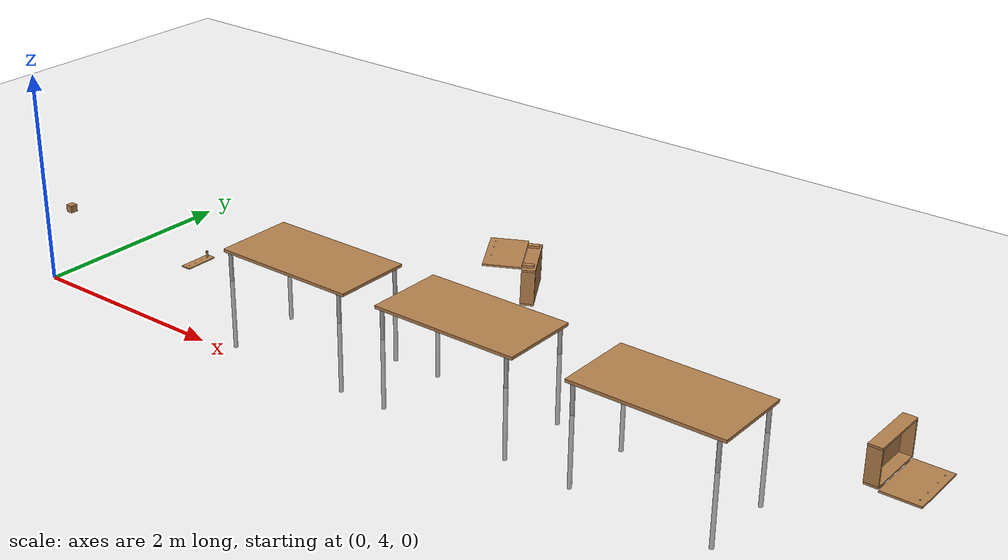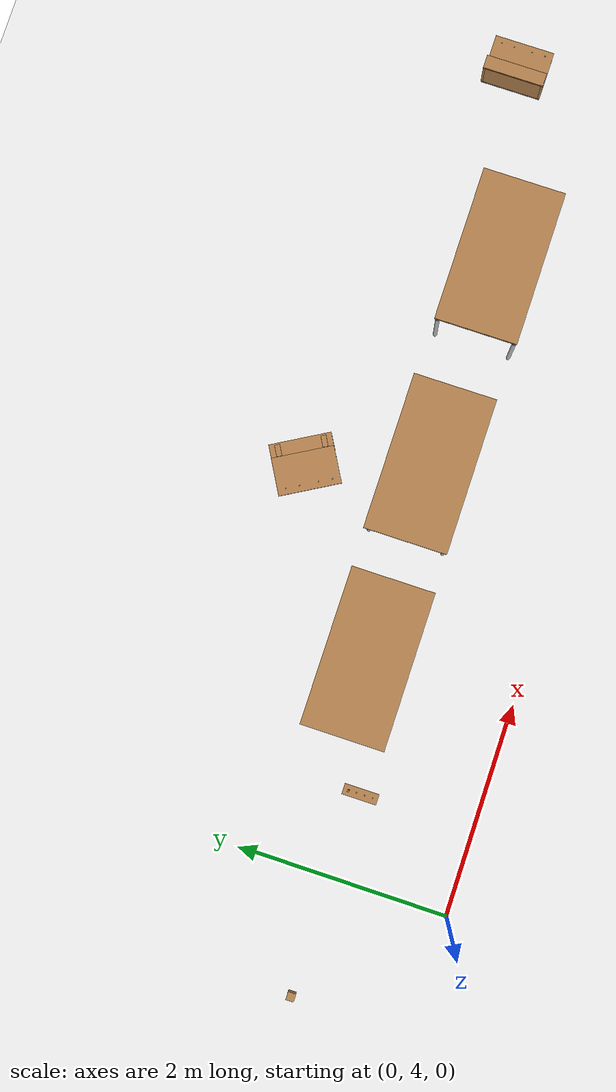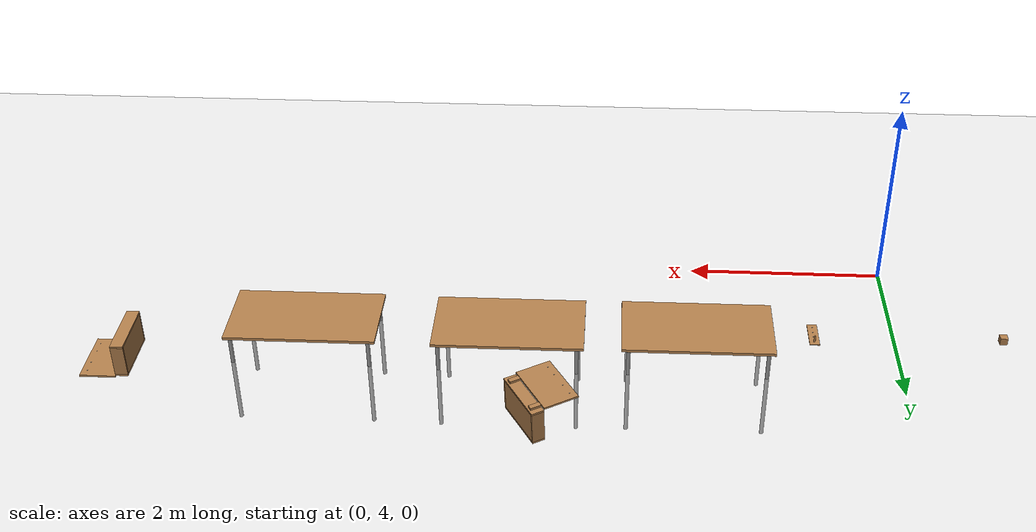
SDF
<sdf version="1.7">
 <world name="default">
  <model name="ground_plane">
   <static>1</static>
   <link name="link">
    <collision name="collision">
     <geometry><plane><normal>0 0 1</normal><size>100 100</size></plane></geometry>
     <surface><friction><ode><mu>100</mu><mu2>50</mu2></ode></friction></surface>
    </collision>
    <visual name="visual">
     <cast_shadows>0</cast_shadows>
     <geometry><plane><normal>0 0 1</normal><size>100 100</size></plane></geometry>
     <material>
      <script><uri>file://media/materials/scripts/gazebo.material</uri><name>Gazebo/Grey</name></script>
     </material>
    </visual>
   </link>
  </model>
  <model name="table">
   <static>1</static>
   <link name="link">
    <collision name="surface">
     <pose>0 0 1 0 -0 0</pose>
     <geometry><box><size>1.5 0.8 0.03</size></box></geometry>
     <surface><friction><ode><mu>0.6</mu><mu2>0.6</mu2></ode></friction></surface>
    </collision>
    <visual name="visual1">
     <pose>0 0 1 0 -0 0</pose>
     <geometry><box><size>1.5 0.8 0.03</size></box></geometry>
     <material>
      <script><uri>file://media/materials/scripts/gazebo.material</uri><name>Gazebo/Wood</name></script>
     </material>
    </visual>
    <collision name="front_left_leg">
     <pose>0.68 0.38 0.5 0 -0 0</pose>
     <geometry><cylinder><radius>0.02</radius><length>1</length></cylinder></geometry>
    </collision>
    <visual name="front_left_leg">
     <pose>0.68 0.38 0.5 0 -0 0</pose>
     <geometry><cylinder><radius>0.02</radius><length>1</length></cylinder></geometry>
     <material>
      <script><uri>file://media/materials/scripts/gazebo.material</uri><name>Gazebo/Grey</name></script>
     </material>
    </visual>
    <collision name="front_right_leg">
     <pose>0.68 -0.38 0.5 0 -0 0</pose>
     <geometry><cylinder><radius>0.02</radius><length>1</length></cylinder></geometry>
    </collision>
    <visual name="front_right_leg">
     <pose>0.68 -0.38 0.5 0 -0 0</pose>
     <geometry><cylinder><radius>0.02</radius><length>1</length></cylinder></geometry>
     <material>
      <script><uri>file://media/materials/scripts/gazebo.material</uri><name>Gazebo/Grey</name></script>
     </material>
    </visual>
    <collision name="back_right_leg">
     <pose>-0.68 -0.38 0.5 0 -0 0</pose>
     <geometry><cylinder><radius>0.02</radius><length>1</length></cylinder></geometry>
    </collision>
    <visual name="back_right_leg">
     <pose>-0.68 -0.38 0.5 0 -0 0</pose>
     <geometry><cylinder><radius>0.02</radius><length>1</length></cylinder></geometry>
     <material>
      <script><uri>file://media/materials/scripts/gazebo.material</uri><name>Gazebo/Grey</name></script>
     </material>
    </visual>
    <collision name="back_left_leg">
     <pose>-0.68 0.38 0.5 0 -0 0</pose>
     <geometry><cylinder><radius>0.02</radius><length>1</length></cylinder></geometry>
    </collision>
    <visual name="back_left_leg">
     <pose>-0.68 0.38 0.5 0 -0 0</pose>
     <geometry><cylinder><radius>0.02</radius><length>1</length></cylinder></geometry>
     <material>
      <script><uri>file://media/materials/scripts/gazebo.material</uri><name>Gazebo/Grey</name></script>
     </material>
    </visual>
   </link>
   <pose>5.91005 5.39504 -0.713216 0 -0 0</pose>
  </model>
  <model name="table_clone">
   <static>1</static>
   <link name="link">
    <collision name="surface">
     <pose>0 0 1 0 -0 0</pose>
     <geometry><box><size>1.5 0.8 0.03</size></box></geometry>
     <surface><friction><ode><mu>0.6</mu><mu2>0.6</mu2></ode></friction></surface>
    </collision>
    <visual name="visual1">
     <pose>0 0 1 0 -0 0</pose>
     <geometry><box><size>1.5 0.8 0.03</size></box></geometry>
     <material>
      <script><uri>file://media/materials/scripts/gazebo.material</uri><name>Gazebo/Wood</name></script>
     </material>
    </visual>
    <collision name="front_left_leg">
     <pose>0.68 0.38 0.5 0 -0 0</pose>
     <geometry><cylinder><radius>0.02</radius><length>1</length></cylinder></geometry>
    </collision>
    <visual name="front_left_leg">
     <pose>0.68 0.38 0.5 0 -0 0</pose>
     <geometry><cylinder><radius>0.02</radius><length>1</length></cylinder></geometry>
     <material>
      <script><uri>file://media/materials/scripts/gazebo.material</uri><name>Gazebo/Grey</name></script>
     </material>
    </visual>
    <collision name="front_right_leg">
     <pose>0.68 -0.38 0.5 0 -0 0</pose>
     <geometry><cylinder><radius>0.02</radius><length>1</length></cylinder></geometry>
    </collision>
    <visual name="front_right_leg">
     <pose>0.68 -0.38 0.5 0 -0 0</pose>
     <geometry><cylinder><radius>0.02</radius><length>1</length></cylinder></geometry>
     <material>
      <script><uri>file://media/materials/scripts/gazebo.material</uri><name>Gazebo/Grey</name></script>
     </material>
    </visual>
    <collision name="back_right_leg">
     <pose>-0.68 -0.38 0.5 0 -0 0</pose>
     <geometry><cylinder><radius>0.02</radius><length>1</length></cylinder></geometry>
    </collision>
    <visual name="back_right_leg">
     <pose>-0.68 -0.38 0.5 0 -0 0</pose>
     <geometry><cylinder><radius>0.02</radius><length>1</length></cylinder></geometry>
     <material>
      <script><uri>file://media/materials/scripts/gazebo.material</uri><name>Gazebo/Grey</name></script>
     </material>
    </visual>
    <collision name="back_left_leg">
     <pose>-0.68 0.38 0.5 0 -0 0</pose>
     <geometry><cylinder><radius>0.02</radius><length>1</length></cylinder></geometry>
    </collision>
    <visual name="back_left_leg">
     <pose>-0.68 0.38 0.5 0 -0 0</pose>
     <geometry><cylinder><radius>0.02</radius><length>1</length></cylinder></geometry>
     <material>
      <script><uri>file://media/materials/scripts/gazebo.material</uri><name>Gazebo/Grey</name></script>
     </material>
    </visual>
   </link>
   <pose>3.86348 5.41388 -0.713216 0 -0 0</pose>
  </model>
  <model name="table_clone_0">
   <static>1</static>
   <link name="link">
    <collision name="surface">
     <pose>0 0 1 0 -0 0</pose>
     <geometry><box><size>1.5 0.8 0.03</size></box></geometry>
     <surface><friction><ode><mu>0.6</mu><mu2>0.6</mu2></ode></friction></surface>
    </collision>
    <visual name="visual1">
     <pose>0 0 1 0 -0 0</pose>
     <geometry><box><size>1.5 0.8 0.03</size></box></geometry>
     <material>
      <script><uri>file://media/materials/scripts/gazebo.material</uri><name>Gazebo/Wood</name></script>
     </material>
    </visual>
    <collision name="front_left_leg">
     <pose>0.68 0.38 0.5 0 -0 0</pose>
     <geometry><cylinder><radius>0.02</radius><length>1</length></cylinder></geometry>
    </collision>
    <visual name="front_left_leg">
     <pose>0.68 0.38 0.5 0 -0 0</pose>
     <geometry><cylinder><radius>0.02</radius><length>1</length></cylinder></geometry>
     <material>
      <script><uri>file://media/materials/scripts/gazebo.material</uri><name>Gazebo/Grey</name></script>
     </material>
    </visual>
    <collision name="front_right_leg">
     <pose>0.68 -0.38 0.5 0 -0 0</pose>
     <geometry><cylinder><radius>0.02</radius><length>1</length></cylinder></geometry>
    </collision>
    <visual name="front_right_leg">
     <pose>0.68 -0.38 0.5 0 -0 0</pose>
     <geometry><cylinder><radius>0.02</radius><length>1</length></cylinder></geometry>
     <material>
      <script><uri>file://media/materials/scripts/gazebo.material</uri><name>Gazebo/Grey</name></script>
     </material>
    </visual>
    <collision name="back_right_leg">
     <pose>-0.68 -0.38 0.5 0 -0 0</pose>
     <geometry><cylinder><radius>0.02</radius><length>1</length></cylinder></geometry>
    </collision>
    <visual name="back_right_leg">
     <pose>-0.68 -0.38 0.5 0 -0 0</pose>
     <geometry><cylinder><radius>0.02</radius><length>1</length></cylinder></geometry>
     <material>
      <script><uri>file://media/materials/scripts/gazebo.material</uri><name>Gazebo/Grey</name></script>
     </material>
    </visual>
    <collision name="back_left_leg">
     <pose>-0.68 0.38 0.5 0 -0 0</pose>
     <geometry><cylinder><radius>0.02</radius><length>1</length></cylinder></geometry>
    </collision>
    <visual name="back_left_leg">
     <pose>-0.68 0.38 0.5 0 -0 0</pose>
     <geometry><cylinder><radius>0.02</radius><length>1</length></cylinder></geometry>
     <material>
      <script><uri>file://media/materials/scripts/gazebo.material</uri><name>Gazebo/Grey</name></script>
     </material>
    </visual>
   </link>
   <pose>1.99959 5.40368 -0.713216 0 -0 0</pose>
  </model>
  <model name="wooden_peg_board">
   <frame name="wooden_board::__model__" attached_to="wooden_board::base">
    <pose relative_to="__model__">0 0 0 0 -0 0</pose>
   </frame>
   <link name="wooden_board::base">
    <pose relative_to="wooden_board::__model__">0 0 0.00523 0 -0 0</pose>
    <inertial>
     <mass>0.2765</mass>
     <inertia>
      <ixx>0.0025148</ixx>
      <ixy>0</ixy>
      <ixz>0</ixz>
      <iyy>0.00024037</iyy>
      <iyz>0</iyz>
      <izz>0.00275013</izz>
     </inertia>
    </inertial>
    <collision name="collision">
     <geometry><box><size>0.1016 0.3302 0.01046</size></box></geometry>
     <surface>
      <contact>
       <poissons_ratio>0.347</poissons_ratio>
       <elastic_modulus>8.8e+09</elastic_modulus>
       <ode><kp>100000</kp><kd>100</kd><max_vel>100</max_vel><min_depth>0.001</min_depth></ode>
      </contact>
      <friction>
       <torsional>
        <coefficient>1</coefficient>
        <use_patch_radius>0</use_patch_radius>
        <surface_radius>0.01</surface_radius>
       </torsional>
      </friction>
     </surface>
    </collision>
    <visual name="visual">
     <geometry><box><size>0.1016 0.3302 0.01046</size></box></geometry>
     <material>
      <script><uri>file://media/materials/scripts/gazebo.material</uri><name>Gazebo/Wood</name></script>
     </material>
    </visual>
    <visual name="tee_nut_1">
     <pose>0 -0.116 0 0 -0 0</pose>
     <geometry><cylinder><radius>0.00635</radius><length>0.0105646</length></cylinder></geometry>
     <material>
      <script><uri>file://media/materials/scripts/gazebo.material</uri><name>Gazebo/Grey</name></script>
     </material>
    </visual>
    <visual name="tee_nut_2">
     <pose>0 -0.038 0 0 -0 0</pose>
     <geometry><cylinder><radius>0.00635</radius><length>0.0105646</length></cylinder></geometry>
     <material>
      <script><uri>file://media/materials/scripts/gazebo.material</uri><name>Gazebo/Grey</name></script>
     </material>
    </visual>
    <visual name="tee_nut_3">
     <pose>0 0.038 0 0 -0 0</pose>
     <geometry><cylinder><radius>0.00635</radius><length>0.0105646</length></cylinder></geometry>
     <material>
      <script><uri>file://media/materials/scripts/gazebo.material</uri><name>Gazebo/Grey</name></script>
     </material>
    </visual>
    <visual name="tee_nut_4">
     <pose>0 0.116 0 0 -0 0</pose>
     <geometry><cylinder><radius>0.00635</radius><length>0.0105646</length></cylinder></geometry>
     <material>
      <script><uri>file://media/materials/scripts/gazebo.material</uri><name>Gazebo/Grey</name></script>
     </material>
    </visual>
   </link>
   <frame name="peg::__model__" attached_to="peg::link">
    <pose relative_to="__model__">0 0.116 0 0 -0 0</pose>
   </frame>
   <link name="peg::link">
    <pose relative_to="peg::__model__">0 0 0.04 0 -0 0</pose>
    <inertial>
     <mass>0.0175</mass>
     <inertia>
      <ixx>9.74923e-06</ixx>
      <ixy>0</ixy>
      <ixz>0</ixz>
      <iyy>9.74923e-06</iyy>
      <iyz>0</iyz>
      <izz>8.31797e-07</izz>
     </inertia>
    </inertial>
    <collision name="collision">
     <geometry><cylinder><radius>0.00975</radius><length>0.08</length></cylinder></geometry>
     <surface>
      <contact>
       <poissons_ratio>0.347</poissons_ratio>
       <elastic_modulus>8.8e+09</elastic_modulus>
       <ode><kp>100000</kp><kd>100</kd><max_vel>100</max_vel><min_depth>0.001</min_depth></ode>
      </contact>
      <friction>
       <torsional>
        <coefficient>1</coefficient>
        <use_patch_radius>0</use_patch_radius>
        <surface_radius>0.01</surface_radius>
       </torsional>
      </friction>
     </surface>
    </collision>
    <visual name="visual">
     <geometry><cylinder><radius>0.00975</radius><length>0.08</length></cylinder></geometry>
     <material>
      <script><uri>file://media/materials/scripts/gazebo.material</uri><name>Gazebo/Wood</name></script>
     </material>
    </visual>
   </link>
   <joint name="board_peg" type="revolute">
    <parent>wooden_board::base</parent>
    <child>peg::link</child>
    <axis>
     <xyz>0 0 1</xyz>
     <limit><upper>0</upper><lower>0</lower></limit>
     <dynamics><spring_reference>0</spring_reference><spring_stiffness>0</spring_stiffness></dynamics>
    </axis>
   </joint>
   <pose>0.79943 5.08483 -0.001004 1.3e-05 -0 -1e-06</pose>
  </model>
  <model name="wooden_case_metal_peg">
   <frame name="wooden_case::__model__" attached_to="wooden_case::base">
    <pose relative_to="__model__">0 0 0 0 -0 0</pose>
   </frame>
   <link name="wooden_case::base">
    <pose relative_to="wooden_case::__model__">0 0 0.024 0 -0 0</pose>
    <inertial>
     <pose>-0.022184 0 0.171592 0 -0 0</pose>
     <mass>3.96264</mass>
     <inertia>
      <ixx>0.213536</ixx>
      <ixy>0</ixy>
      <ixz>0.000779377</ixz>
      <iyy>0.0708943</iyy>
      <iyz>0</iyz>
      <izz>0.154604</izz>
     </inertia>
    </inertial>
    <collision name="collision_back">
     <pose>-0.053975 0 0.1778 0 -0 0</pose>
     <geometry><box><size>0.01905 0.5461 0.3175</size></box></geometry>
     <surface>
      <contact>
       <poissons_ratio>0.347</poissons_ratio>
       <elastic_modulus>8.8e+09</elastic_modulus>
       <ode><kp>100000</kp><kd>100</kd><max_vel>100</max_vel><min_depth>0.001</min_depth></ode>
      </contact>
      <friction>
       <torsional>
        <coefficient>1</coefficient>
        <use_patch_radius>0</use_patch_radius>
        <surface_radius>0.01</surface_radius>
       </torsional>
      </friction>
     </surface>
    </collision>
    <visual name="visual_back">
     <pose>-0.053975 0 0.1778 0 -0 0</pose>
     <geometry><box><size>0.01905 0.5461 0.3175</size></box></geometry>
     <material>
      <script><uri>file://media/materials/scripts/gazebo.material</uri><name>Gazebo/Wood</name></script>
     </material>
    </visual>
    <collision name="collision_bottom">
     <pose>0 0 0.009525 0 -0 0</pose>
     <geometry><box><size>0.127 0.5842 0.01905</size></box></geometry>
     <surface>
      <contact>
       <poissons_ratio>0.347</poissons_ratio>
       <elastic_modulus>8.8e+09</elastic_modulus>
       <ode><kp>100000</kp><kd>100</kd><max_vel>100</max_vel><min_depth>0.001</min_depth></ode>
      </contact>
      <friction>
       <torsional>
        <coefficient>1</coefficient>
        <use_patch_radius>0</use_patch_radius>
        <surface_radius>0.01</surface_radius>
       </torsional>
      </friction>
     </surface>
    </collision>
    <visual name="visual_bottom">
     <pose>0 0 0.009525 0 -0 0</pose>
     <geometry><box><size>0.127 0.5842 0.01905</size></box></geometry>
     <material>
      <script><uri>file://media/materials/scripts/gazebo.material</uri><name>Gazebo/Wood</name></script>
     </material>
    </visual>
    <collision name="collision_top">
     <pose>0 0 0.346075 0 -0 0</pose>
     <geometry><box><size>0.127 0.5842 0.01905</size></box></geometry>
     <surface>
      <contact>
       <poissons_ratio>0.347</poissons_ratio>
       <elastic_modulus>8.8e+09</elastic_modulus>
       <ode><kp>100000</kp><kd>100</kd><max_vel>100</max_vel><min_depth>0.001</min_depth></ode>
      </contact>
      <friction>
       <torsional>
        <coefficient>1</coefficient>
        <use_patch_radius>0</use_patch_radius>
        <surface_radius>0.01</surface_radius>
       </torsional>
      </friction>
     </surface>
    </collision>
    <visual name="visual_top">
     <pose>0 0 0.346075 0 -0 0</pose>
     <geometry><box><size>0.127 0.5842 0.01905</size></box></geometry>
     <material>
      <script><uri>file://media/materials/scripts/gazebo.material</uri><name>Gazebo/Wood</name></script>
     </material>
    </visual>
    <collision name="collision_left">
     <pose>0 -0.282575 0.1778 0 -0 0</pose>
     <geometry><box><size>0.127 0.01905 0.3175</size></box></geometry>
     <surface>
      <contact>
       <poissons_ratio>0.347</poissons_ratio>
       <elastic_modulus>8.8e+09</elastic_modulus>
       <ode><kp>100000</kp><kd>100</kd><max_vel>100</max_vel><min_depth>0.001</min_depth></ode>
      </contact>
      <friction>
       <torsional>
        <coefficient>1</coefficient>
        <use_patch_radius>0</use_patch_radius>
        <surface_radius>0.01</surface_radius>
       </torsional>
      </friction>
     </surface>
    </collision>
    <visual name="visual_left">
     <pose>0 -0.282575 0.1778 0 -0 0</pose>
     <geometry><box><size>0.127 0.01905 0.3175</size></box></geometry>
     <material>
      <script><uri>file://media/materials/scripts/gazebo.material</uri><name>Gazebo/Wood</name></script>
     </material>
    </visual>
    <collision name="collision_right">
     <pose>0 0.282575 0.1778 0 -0 0</pose>
     <geometry><box><size>0.127 0.01905 0.3175</size></box></geometry>
     <surface>
      <contact>
       <poissons_ratio>0.347</poissons_ratio>
       <elastic_modulus>8.8e+09</elastic_modulus>
       <ode><kp>100000</kp><kd>100</kd><max_vel>100</max_vel><min_depth>0.001</min_depth></ode>
      </contact>
      <friction>
       <torsional>
        <coefficient>1</coefficient>
        <use_patch_radius>0</use_patch_radius>
        <surface_radius>0.01</surface_radius>
       </torsional>
      </friction>
     </surface>
    </collision>
    <visual name="visual_right">
     <pose>0 0.282575 0.1778 0 -0 0</pose>
     <geometry><box><size>0.127 0.01905 0.3175</size></box></geometry>
     <material>
      <script><uri>file://media/materials/scripts/gazebo.material</uri><name>Gazebo/Wood</name></script>
     </material>
    </visual>
    <collision name="collision_block_left">
     <pose>0.0095 -0.2151 -0.012 0 -0 0</pose>
     <geometry><box><size>0.108 0.05 0.024</size></box></geometry>
     <surface>
      <contact>
       <poissons_ratio>0.347</poissons_ratio>
       <elastic_modulus>8.8e+09</elastic_modulus>
       <ode><kp>100000</kp><kd>100</kd><max_vel>100</max_vel><min_depth>0.001</min_depth></ode>
      </contact>
      <friction>
       <torsional>
        <coefficient>1</coefficient>
        <use_patch_radius>0</use_patch_radius>
        <surface_radius>0.01</surface_radius>
       </torsional>
      </friction>
     </surface>
    </collision>
    <visual name="visual_block_left">
     <pose>0.0095 -0.2151 -0.012 0 -0 0</pose>
     <geometry><box><size>0.108 0.05 0.024</size></box></geometry>
     <material>
      <script><uri>file://media/materials/scripts/gazebo.material</uri><name>Gazebo/Wood</name></script>
     </material>
    </visual>
    <collision name="collision_block_right">
     <pose>0.0095 0.2151 -0.012 0 -0 0</pose>
     <geometry><box><size>0.108 0.05 0.024</size></box></geometry>
     <surface>
      <contact>
       <poissons_ratio>0.347</poissons_ratio>
       <elastic_modulus>8.8e+09</elastic_modulus>
       <ode><kp>100000</kp><kd>100</kd><max_vel>100</max_vel><min_depth>0.001</min_depth></ode>
      </contact>
      <friction>
       <torsional>
        <coefficient>1</coefficient>
        <use_patch_radius>0</use_patch_radius>
        <surface_radius>0.01</surface_radius>
       </torsional>
      </friction>
     </surface>
    </collision>
    <visual name="visual_block_right">
     <pose>0.0095 0.2151 -0.012 0 -0 0</pose>
     <geometry><box><size>0.108 0.05 0.024</size></box></geometry>
     <material>
      <script><uri>file://media/materials/scripts/gazebo.material</uri><name>Gazebo/Wood</name></script>
     </material>
    </visual>
   </link>
   <link name="wooden_case::lid">
    <pose relative_to="wooden_case::__model__">0.243775 0 0.009525 0 -0 0</pose>
    <inertial>
     <mass>1.97874</mass>
     <inertia>
      <ixx>0.0563367</ixx>
      <ixy>0</ixy>
      <ixz>0</ixz>
      <iyy>0.020911</iyy>
      <iyz>0</iyz>
      <izz>0.0771281</izz>
     </inertia>
    </inertial>
    <collision name="collision">
     <geometry><box><size>0.3556 0.5842 0.01905</size></box></geometry>
     <surface>
      <contact>
       <poissons_ratio>0.347</poissons_ratio>
       <elastic_modulus>8.8e+09</elastic_modulus>
       <ode><kp>100000</kp><kd>100</kd><max_vel>100</max_vel><min_depth>0.001</min_depth></ode>
      </contact>
      <friction>
       <torsional>
        <coefficient>1</coefficient>
        <use_patch_radius>0</use_patch_radius>
        <surface_radius>0.01</surface_radius>
       </torsional>
      </friction>
     </surface>
    </collision>
    <visual name="visual">
     <geometry><box><size>0.3556 0.5842 0.01905</size></box></geometry>
     <material>
      <script><uri>file://media/materials/scripts/gazebo.material</uri><name>Gazebo/Wood</name></script>
     </material>
    </visual>
    <visual name="tee_nut_1">
     <pose>0.122 -0.216 0 0 -0 0</pose>
     <geometry><cylinder><radius>0.00635</radius><length>0.0192405</length></cylinder></geometry>
     <material>
      <script><uri>file://media/materials/scripts/gazebo.material</uri><name>Gazebo/Grey</name></script>
     </material>
    </visual>
    <visual name="tee_nut_2">
     <pose>0.122 -0.088 0 0 -0 0</pose>
     <geometry><cylinder><radius>0.00635</radius><length>0.0192405</length></cylinder></geometry>
     <material>
      <script><uri>file://media/materials/scripts/gazebo.material</uri><name>Gazebo/Grey</name></script>
     </material>
    </visual>
    <visual name="tee_nut_3">
     <pose>0.122 0.088 0 0 -0 0</pose>
     <geometry><cylinder><radius>0.00635</radius><length>0.0192405</length></cylinder></geometry>
     <material>
      <script><uri>file://media/materials/scripts/gazebo.material</uri><name>Gazebo/Grey</name></script>
     </material>
    </visual>
    <visual name="tee_nut_4">
     <pose>0.122 0.216 0 0 -0 0</pose>
     <geometry><cylinder><radius>0.00635</radius><length>0.0192405</length></cylinder></geometry>
     <material>
      <script><uri>file://media/materials/scripts/gazebo.material</uri><name>Gazebo/Grey</name></script>
     </material>
    </visual>
   </link>
   <joint name="wooden_case::lid_hinge" type="revolute">
    <pose>-0.1778 0 0.01905 0 -0 0</pose>
    <parent>wooden_case::base</parent>
    <child>wooden_case::lid</child>
    <axis>
     <xyz>0 1 0</xyz>
     <limit><upper>0.523599</upper><lower>-1.5708</lower></limit>
     <dynamics><spring_reference>0</spring_reference><spring_stiffness>0</spring_stiffness></dynamics>
    </axis>
   </joint>
   <frame name="peg::__model__" attached_to="peg::link">
    <pose relative_to="__model__">0.365774 0.216 0.01905 0 -0 0</pose>
   </frame>
   <link name="peg::link">
    <pose relative_to="peg::__model__">0 0 0.031 0 -0 0</pose>
    <inertial>
     <mass>0.0121</mass>
     <inertia>
      <ixx>3.90898e-06</ixx>
      <ixy>0</ixy>
      <ixz>0</ixz>
      <iyy>3.90898e-06</iyy>
      <iyz>0</iyz>
      <izz>6.58845e-08</izz>
     </inertia>
    </inertial>
    <collision name="collision">
     <geometry><cylinder><radius>0.0033</radius><length>0.062</length></cylinder></geometry>
     <surface>
      <contact>
       <poissons_ratio>0.305</poissons_ratio>
       <elastic_modulus>2e+11</elastic_modulus>
       <ode><kp>100000</kp><kd>100</kd><max_vel>100</max_vel><min_depth>0.001</min_depth></ode>
      </contact>
      <friction>
       <torsional>
        <coefficient>1</coefficient>
        <use_patch_radius>0</use_patch_radius>
        <surface_radius>0.01</surface_radius>
       </torsional>
      </friction>
     </surface>
    </collision>
    <visual name="visual">
     <geometry><cylinder><radius>0.0033</radius><length>0.062</length></cylinder></geometry>
     <material>
      <script><uri>file://media/materials/scripts/gazebo.material</uri><name>Gazebo/Grey</name></script>
     </material>
    </visual>
   </link>
   <joint name="case_peg" type="revolute">
    <child>peg::link</child>
    <parent>wooden_case::lid</parent>
    <axis>
     <xyz>0 0 1</xyz>
     <limit><upper>0</upper><lower>0</lower></limit>
     <dynamics><spring_reference>0</spring_reference><spring_stiffness>0</spring_stiffness></dynamics>
    </axis>
   </joint>
   <pose>3.65013 6.58596 0.380048 -3.14159 -0.027358 -2.62021</pose>
  </model>
  <model name="wood_cube_7_5cm">
   <link name="link">
    <pose>0 0 0.0375 0 -0 0</pose>
    <inertial>
     <mass>0.2249</mass>
     <inertia>
      <ixx>0.000210844</ixx>
      <ixy>0</ixy>
      <ixz>0</ixz>
      <iyy>0.000210844</iyy>
      <iyz>0</iyz>
      <izz>0.000210844</izz>
     </inertia>
    </inertial>
    <collision name="collision">
     <geometry><box><size>0.075 0.075 0.075</size></box></geometry>
     <surface>
      <contact>
       <poissons_ratio>0.347</poissons_ratio>
       <elastic_modulus>8.8e+09</elastic_modulus>
       <ode><kp>100000</kp><kd>100</kd><max_vel>100</max_vel><min_depth>0.001</min_depth></ode>
      </contact>
      <friction>
       <torsional>
        <coefficient>1</coefficient>
        <use_patch_radius>0</use_patch_radius>
        <surface_radius>0.01</surface_radius>
       </torsional>
      </friction>
     </surface>
    </collision>
    <visual name="visual">
     <geometry><box><size>0.075 0.075 0.075</size></box></geometry>
     <material>
      <script><uri>file://media/materials/scripts/gazebo.material</uri><name>Gazebo/Wood</name></script>
     </material>
    </visual>
   </link>
   <pose>-1.0976 5.1188 -0.001005 0 -0 0</pose>
  </model>
  <model name="wooden_case">
   <link name="base">
    <pose>0 0 0.024 0 -0 0</pose>
    <inertial>
     <pose>-0.022184 0 0.171592 0 -0 0</pose>
     <mass>3.96264</mass>
     <inertia>
      <ixx>0.213536</ixx>
      <ixy>0</ixy>
      <ixz>0.000779377</ixz>
      <iyy>0.0708943</iyy>
      <iyz>0</iyz>
      <izz>0.154604</izz>
     </inertia>
    </inertial>
    <collision name="collision_back">
     <pose>-0.053975 0 0.1778 0 -0 0</pose>
     <geometry><box><size>0.01905 0.5461 0.3175</size></box></geometry>
     <surface>
      <contact>
       <poissons_ratio>0.347</poissons_ratio>
       <elastic_modulus>8.8e+09</elastic_modulus>
       <ode><kp>100000</kp><kd>100</kd><max_vel>100</max_vel><min_depth>0.001</min_depth></ode>
      </contact>
      <friction>
       <torsional>
        <coefficient>1</coefficient>
        <use_patch_radius>0</use_patch_radius>
        <surface_radius>0.01</surface_radius>
       </torsional>
      </friction>
     </surface>
    </collision>
    <visual name="visual_back">
     <pose>-0.053975 0 0.1778 0 -0 0</pose>
     <geometry><box><size>0.01905 0.5461 0.3175</size></box></geometry>
     <material>
      <script><uri>file://media/materials/scripts/gazebo.material</uri><name>Gazebo/Wood</name></script>
     </material>
    </visual>
    <collision name="collision_bottom">
     <pose>0 0 0.009525 0 -0 0</pose>
     <geometry><box><size>0.127 0.5842 0.01905</size></box></geometry>
     <surface>
      <contact>
       <poissons_ratio>0.347</poissons_ratio>
       <elastic_modulus>8.8e+09</elastic_modulus>
       <ode><kp>100000</kp><kd>100</kd><max_vel>100</max_vel><min_depth>0.001</min_depth></ode>
      </contact>
      <friction>
       <torsional>
        <coefficient>1</coefficient>
        <use_patch_radius>0</use_patch_radius>
        <surface_radius>0.01</surface_radius>
       </torsional>
      </friction>
     </surface>
    </collision>
    <visual name="visual_bottom">
     <pose>0 0 0.009525 0 -0 0</pose>
     <geometry><box><size>0.127 0.5842 0.01905</size></box></geometry>
     <material>
      <script><uri>file://media/materials/scripts/gazebo.material</uri><name>Gazebo/Wood</name></script>
     </material>
    </visual>
    <collision name="collision_top">
     <pose>0 0 0.346075 0 -0 0</pose>
     <geometry><box><size>0.127 0.5842 0.01905</size></box></geometry>
     <surface>
      <contact>
       <poissons_ratio>0.347</poissons_ratio>
       <elastic_modulus>8.8e+09</elastic_modulus>
       <ode><kp>100000</kp><kd>100</kd><max_vel>100</max_vel><min_depth>0.001</min_depth></ode>
      </contact>
      <friction>
       <torsional>
        <coefficient>1</coefficient>
        <use_patch_radius>0</use_patch_radius>
        <surface_radius>0.01</surface_radius>
       </torsional>
      </friction>
     </surface>
    </collision>
    <visual name="visual_top">
     <pose>0 0 0.346075 0 -0 0</pose>
     <geometry><box><size>0.127 0.5842 0.01905</size></box></geometry>
     <material>
      <script><uri>file://media/materials/scripts/gazebo.material</uri><name>Gazebo/Wood</name></script>
     </material>
    </visual>
    <collision name="collision_left">
     <pose>0 -0.282575 0.1778 0 -0 0</pose>
     <geometry><box><size>0.127 0.01905 0.3175</size></box></geometry>
     <surface>
      <contact>
       <poissons_ratio>0.347</poissons_ratio>
       <elastic_modulus>8.8e+09</elastic_modulus>
       <ode><kp>100000</kp><kd>100</kd><max_vel>100</max_vel><min_depth>0.001</min_depth></ode>
      </contact>
      <friction>
       <torsional>
        <coefficient>1</coefficient>
        <use_patch_radius>0</use_patch_radius>
        <surface_radius>0.01</surface_radius>
       </torsional>
      </friction>
     </surface>
    </collision>
    <visual name="visual_left">
     <pose>0 -0.282575 0.1778 0 -0 0</pose>
     <geometry><box><size>0.127 0.01905 0.3175</size></box></geometry>
     <material>
      <script><uri>file://media/materials/scripts/gazebo.material</uri><name>Gazebo/Wood</name></script>
     </material>
    </visual>
    <collision name="collision_right">
     <pose>0 0.282575 0.1778 0 -0 0</pose>
     <geometry><box><size>0.127 0.01905 0.3175</size></box></geometry>
     <surface>
      <contact>
       <poissons_ratio>0.347</poissons_ratio>
       <elastic_modulus>8.8e+09</elastic_modulus>
       <ode><kp>100000</kp><kd>100</kd><max_vel>100</max_vel><min_depth>0.001</min_depth></ode>
      </contact>
      <friction>
       <torsional>
        <coefficient>1</coefficient>
        <use_patch_radius>0</use_patch_radius>
        <surface_radius>0.01</surface_radius>
       </torsional>
      </friction>
     </surface>
    </collision>
    <visual name="visual_right">
     <pose>0 0.282575 0.1778 0 -0 0</pose>
     <geometry><box><size>0.127 0.01905 0.3175</size></box></geometry>
     <material>
      <script><uri>file://media/materials/scripts/gazebo.material</uri><name>Gazebo/Wood</name></script>
     </material>
    </visual>
    <collision name="collision_block_left">
     <pose>0.0095 -0.2151 -0.012 0 -0 0</pose>
     <geometry><box><size>0.108 0.05 0.024</size></box></geometry>
     <surface>
      <contact>
       <poissons_ratio>0.347</poissons_ratio>
       <elastic_modulus>8.8e+09</elastic_modulus>
       <ode><kp>100000</kp><kd>100</kd><max_vel>100</max_vel><min_depth>0.001</min_depth></ode>
      </contact>
      <friction>
       <torsional>
        <coefficient>1</coefficient>
        <use_patch_radius>0</use_patch_radius>
        <surface_radius>0.01</surface_radius>
       </torsional>
      </friction>
     </surface>
    </collision>
    <visual name="visual_block_left">
     <pose>0.0095 -0.2151 -0.012 0 -0 0</pose>
     <geometry><box><size>0.108 0.05 0.024</size></box></geometry>
     <material>
      <script><uri>file://media/materials/scripts/gazebo.material</uri><name>Gazebo/Wood</name></script>
     </material>
    </visual>
    <collision name="collision_block_right">
     <pose>0.0095 0.2151 -0.012 0 -0 0</pose>
     <geometry><box><size>0.108 0.05 0.024</size></box></geometry>
     <surface>
      <contact>
       <poissons_ratio>0.347</poissons_ratio>
       <elastic_modulus>8.8e+09</elastic_modulus>
       <ode><kp>100000</kp><kd>100</kd><max_vel>100</max_vel><min_depth>0.001</min_depth></ode>
      </contact>
      <friction>
       <torsional>
        <coefficient>1</coefficient>
        <use_patch_radius>0</use_patch_radius>
        <surface_radius>0.01</surface_radius>
       </torsional>
      </friction>
     </surface>
    </collision>
    <visual name="visual_block_right">
     <pose>0.0095 0.2151 -0.012 0 -0 0</pose>
     <geometry><box><size>0.108 0.05 0.024</size></box></geometry>
     <material>
      <script><uri>file://media/materials/scripts/gazebo.material</uri><name>Gazebo/Wood</name></script>
     </material>
    </visual>
   </link>
   <link name="lid">
    <pose>0.243775 0 0.009525 0 -0 0</pose>
    <inertial>
     <mass>1.97874</mass>
     <inertia>
      <ixx>0.0563367</ixx>
      <ixy>0</ixy>
      <ixz>0</ixz>
      <iyy>0.020911</iyy>
      <iyz>0</iyz>
      <izz>0.0771281</izz>
     </inertia>
    </inertial>
    <collision name="collision">
     <geometry><box><size>0.3556 0.5842 0.01905</size></box></geometry>
     <surface>
      <contact>
       <poissons_ratio>0.347</poissons_ratio>
       <elastic_modulus>8.8e+09</elastic_modulus>
       <ode><kp>100000</kp><kd>100</kd><max_vel>100</max_vel><min_depth>0.001</min_depth></ode>
      </contact>
      <friction>
       <torsional>
        <coefficient>1</coefficient>
        <use_patch_radius>0</use_patch_radius>
        <surface_radius>0.01</surface_radius>
       </torsional>
      </friction>
     </surface>
    </collision>
    <visual name="visual">
     <geometry><box><size>0.3556 0.5842 0.01905</size></box></geometry>
     <material>
      <script><uri>file://media/materials/scripts/gazebo.material</uri><name>Gazebo/Wood</name></script>
     </material>
    </visual>
    <visual name="tee_nut_1">
     <pose>0.122 -0.216 0 0 -0 0</pose>
     <geometry><cylinder><radius>0.00635</radius><length>0.0192405</length></cylinder></geometry>
     <material>
      <script><uri>file://media/materials/scripts/gazebo.material</uri><name>Gazebo/Grey</name></script>
     </material>
    </visual>
    <visual name="tee_nut_2">
     <pose>0.122 -0.088 0 0 -0 0</pose>
     <geometry><cylinder><radius>0.00635</radius><length>0.0192405</length></cylinder></geometry>
     <material>
      <script><uri>file://media/materials/scripts/gazebo.material</uri><name>Gazebo/Grey</name></script>
     </material>
    </visual>
    <visual name="tee_nut_3">
     <pose>0.122 0.088 0 0 -0 0</pose>
     <geometry><cylinder><radius>0.00635</radius><length>0.0192405</length></cylinder></geometry>
     <material>
      <script><uri>file://media/materials/scripts/gazebo.material</uri><name>Gazebo/Grey</name></script>
     </material>
    </visual>
    <visual name="tee_nut_4">
     <pose>0.122 0.216 0 0 -0 0</pose>
     <geometry><cylinder><radius>0.00635</radius><length>0.0192405</length></cylinder></geometry>
     <material>
      <script><uri>file://media/materials/scripts/gazebo.material</uri><name>Gazebo/Grey</name></script>
     </material>
    </visual>
   </link>
   <joint name="lid_hinge" type="revolute">
    <pose>-0.1778 0 0.01905 0 -0 0</pose>
    <parent>base</parent>
    <child>lid</child>
    <axis>
     <xyz>0 1 0</xyz>
     <limit><upper>0.523599</upper><lower>-1.5708</lower></limit>
     <dynamics><spring_reference>0</spring_reference><spring_stiffness>0</spring_stiffness></dynamics>
    </axis>
   </joint>
   <pose>7.61048 5.79983 -0.001057 0 -0.000428 -1e-06</pose>
  </model>
 </world>
</sdf>
